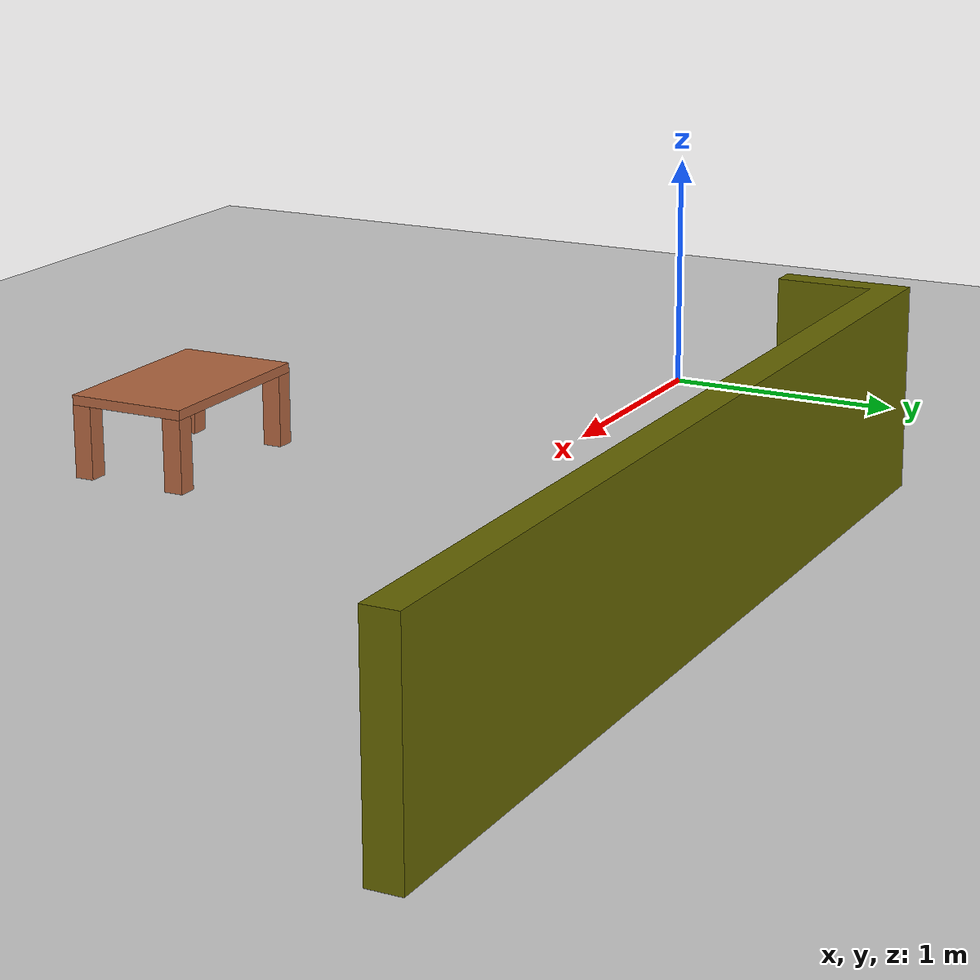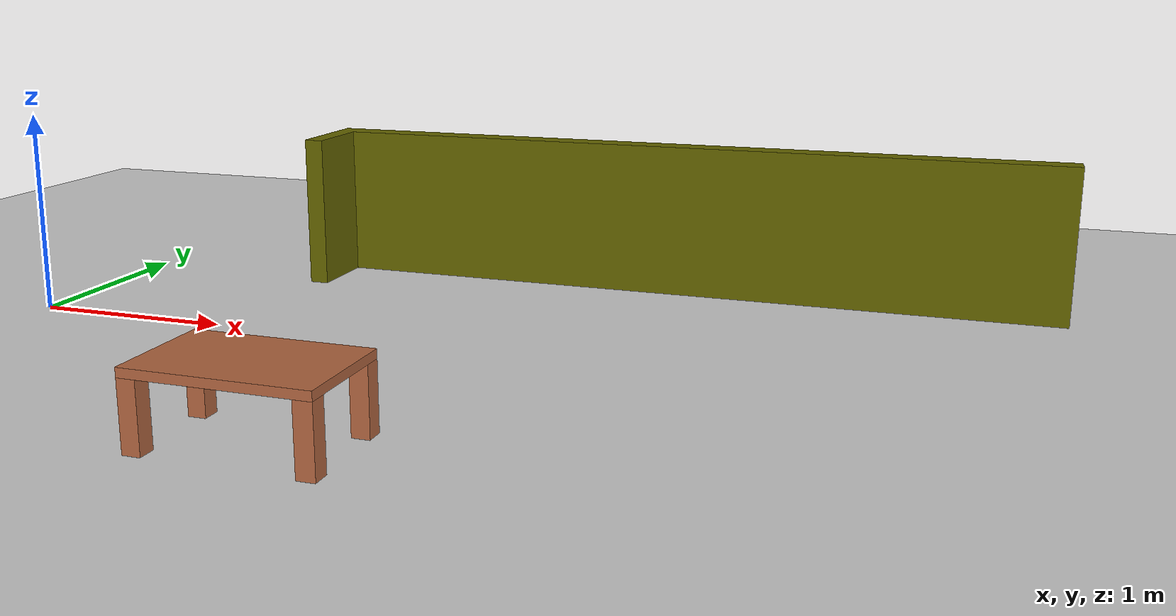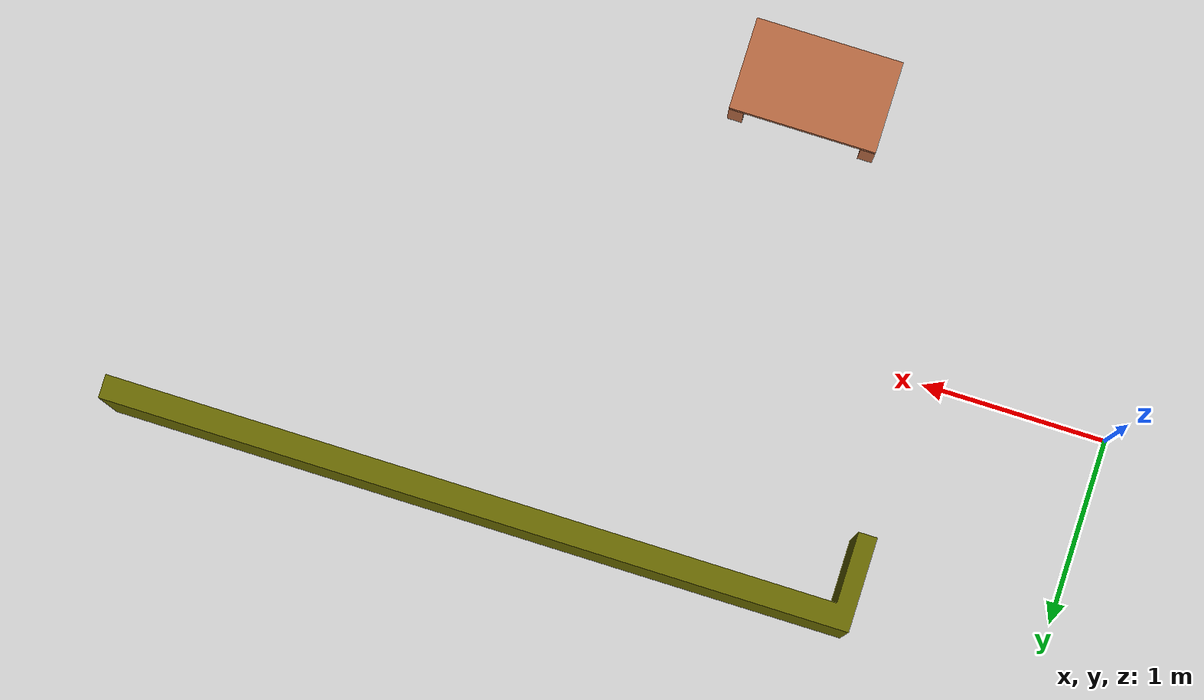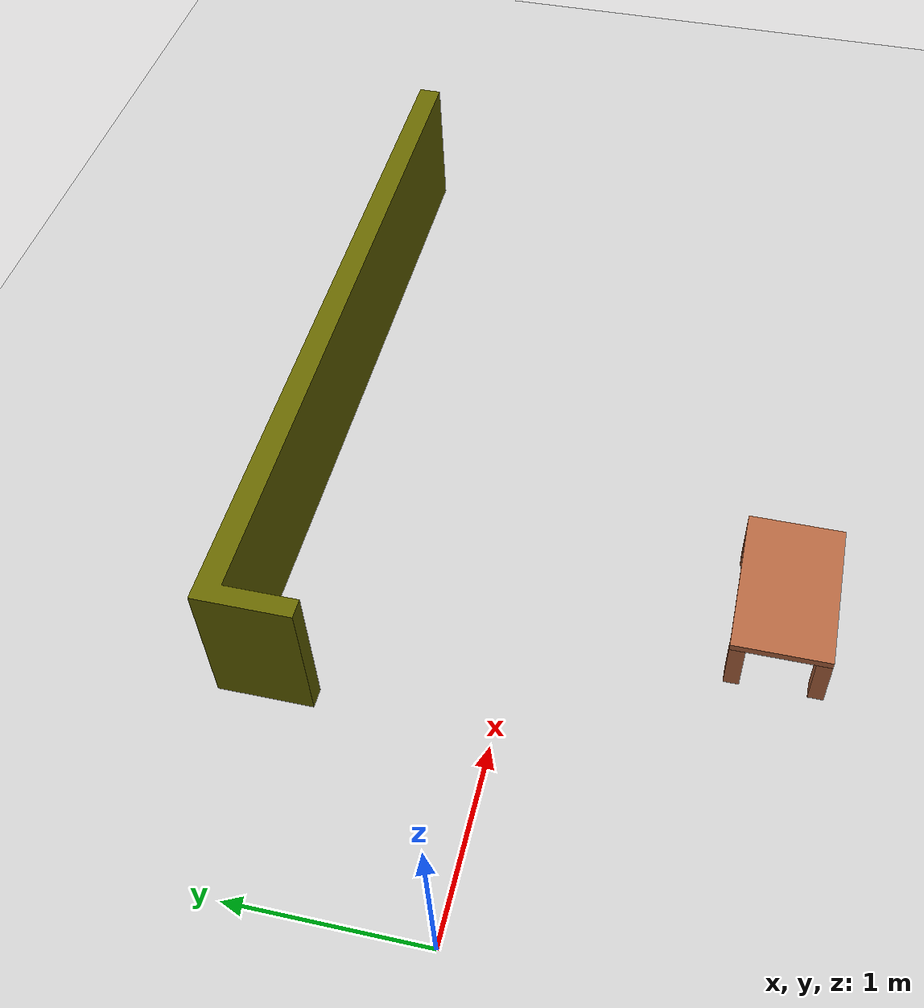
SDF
<?xml version="1.0"?>
<sdf version="1.6">
  <world name="cover">
    <light name="sun" type="directional">
      <direction>0.5 0.1 -0.9</direction>
      <pose>0 0 10 0 0 0</pose>
      <specular>0.2 0.2 0.2 1</specular>
      <cast_shadows>true</cast_shadows>
      <diffuse>0.8 0.8 0.8 1</diffuse>
      <attenuation>
        <range>1000</range>
        <quadratic>0.001</quadratic>
        <constant>0.9</constant>
        <linear>0.01</linear>
      </attenuation>
    </light>
    <include>
      <pose>0 0 0 0 0 0</pose>
      <name>floor</name>
      <uri>model://ground_plane</uri>
    </include>
    <include>
      <pose>0.0 0.0 0 0 0 0</pose>
      <name>wall</name>
      <uri>model://cover/walls</uri>
    </include>
    <include>
      <pose>1.495 1.1 0.0 0.0 0.0 1.57</pose>
      <name>expedit</name>
      <uri>model://expedit/cabinet</uri>
    </include>
    <include>
      <pose>1.3175 0.915 0.5875 0.0 0.0 1.57</pose>
      <name>expedit_door_left</name>
      <uri>model://expedit/door</uri>
    </include>
    <include>
      <pose>1.6725 0.915 0.5875 0.0 0.0 1.57</pose>
      <name>expedit_door_right</name>
      <uri>model://expedit/door</uri>
    </include>
    <include>
      <pose>2.0 -1.3 0.0 0.0 0.0 1.5708</pose>
      <name>coffee_table</name>
      <uri>model://coffee_table</uri>
    </include>
    <physics type="ode">
      <real_time_update_rate>333.0</real_time_update_rate>
      <max_step_size>0.003</max_step_size>
      <ode>
        <constraints>
          <cfm>0.0001</cfm>
        </constraints>
        <solver>
          <type>quick</type>
          <iters>100</iters>
        </solver>
      </ode>
    </physics>
  </world>
</sdf>

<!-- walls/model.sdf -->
<sdf version="1.6">
  <model name="cover/walls">
    <link name="1_link">
      <collision name="1_col">
        <geometry>
          <mesh>
            <uri>model://cover/walls/covered.stl</uri>
          </mesh>
        </geometry>
      </collision>
      <visual name="1_vis">
        <geometry>
          <mesh>
            <uri>model://cover/walls/covered.stl</uri>
          </mesh>
        </geometry>
        <material>
          <ambient>0.4 0.4 0.0 1</ambient>
        </material>
      </visual>
      <pose>0 0 0 0 0 0</pose>
    </link>
    <static>true</static>
  </model>
</sdf>

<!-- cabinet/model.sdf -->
<sdf version="1.6">
  <model name="cabinet">
    <static>true</static>
  </model>
</sdf>

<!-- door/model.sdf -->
<sdf version="1.6">
  <model name="door">
    <static>true</static>
  </model>
</sdf>

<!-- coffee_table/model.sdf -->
<sdf version="1.6">
  <model name="coffee_table">
    <link name="1_link">
      <collision name="1_col">
        <geometry>
          <box>
            <size>0.5 0.8 0.04</size>
          </box>
        </geometry>
      </collision>
      <visual name="1_vis">
        <geometry>
          <box>
            <size>0.5 0.8 0.04</size>
          </box>
        </geometry>
        <material>
          <ambient>0.7 0.4 0.25 1</ambient>
        </material>
      </visual>
      <pose>0 0 0.32 0 0 0</pose>
    </link>
    <link name="2_link">
      <collision name="2_col">
        <geometry>
          <box>
            <size>0.08 0.08 0.3</size>
          </box>
        </geometry>
      </collision>
      <visual name="2_vis">
        <geometry>
          <box>
            <size>0.08 0.08 0.3</size>
          </box>
        </geometry>
        <material>
          <ambient>0.7 0.4 0.25 1</ambient>
        </material>
      </visual>
      <pose>-0.21 -0.36 0.15 0 0 0</pose>
    </link>
    <link name="3_link">
      <collision name="3_col">
        <geometry>
          <box>
            <size>0.08 0.08 0.3</size>
          </box>
        </geometry>
      </collision>
      <visual name="3_vis">
        <geometry>
          <box>
            <size>0.08 0.08 0.3</size>
          </box>
        </geometry>
        <material>
          <ambient>0.7 0.4 0.25 1</ambient>
        </material>
      </visual>
      <pose>-0.21 0.36 0.15 0 0 0</pose>
    </link>
    <link name="4_link">
      <collision name="4_col">
        <geometry>
          <box>
            <size>0.08 0.08 0.3</size>
          </box>
        </geometry>
      </collision>
      <visual name="4_vis">
        <geometry>
          <box>
            <size>0.08 0.08 0.3</size>
          </box>
        </geometry>
        <material>
          <ambient>0.7 0.4 0.25 1</ambient>
        </material>
      </visual>
      <pose>0.21 0.36 0.15 0 0 0</pose>
    </link>
    <link name="5_link">
      <collision name="5_col">
        <geometry>
          <box>
            <size>0.08 0.08 0.3</size>
          </box>
        </geometry>
      </collision>
      <visual name="5_vis">
        <geometry>
          <box>
            <size>0.08 0.08 0.3</size>
          </box>
        </geometry>
        <material>
          <ambient>0.7 0.4 0.25 1</ambient>
        </material>
      </visual>
      <pose>0.21 -0.36 0.15 0 0 0</pose>
    </link>
    <static>true</static>
  </model>
</sdf>
